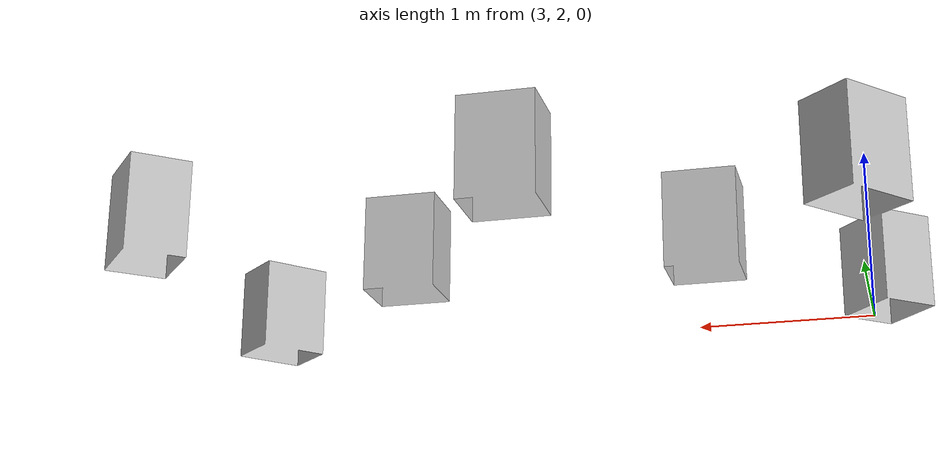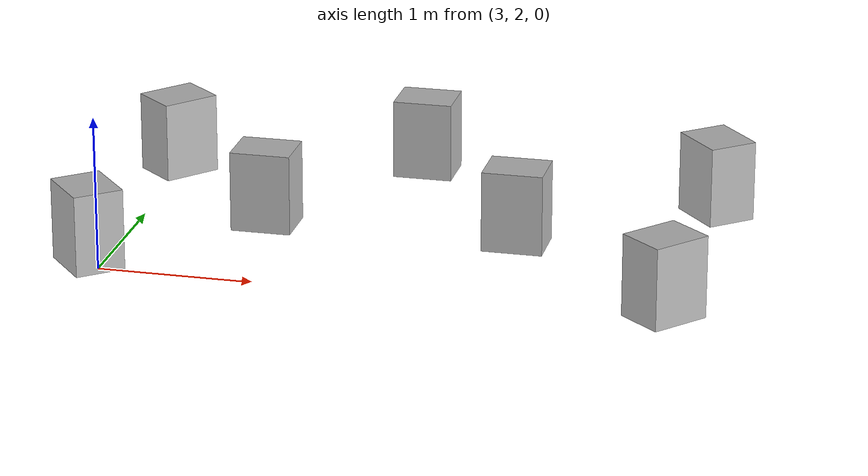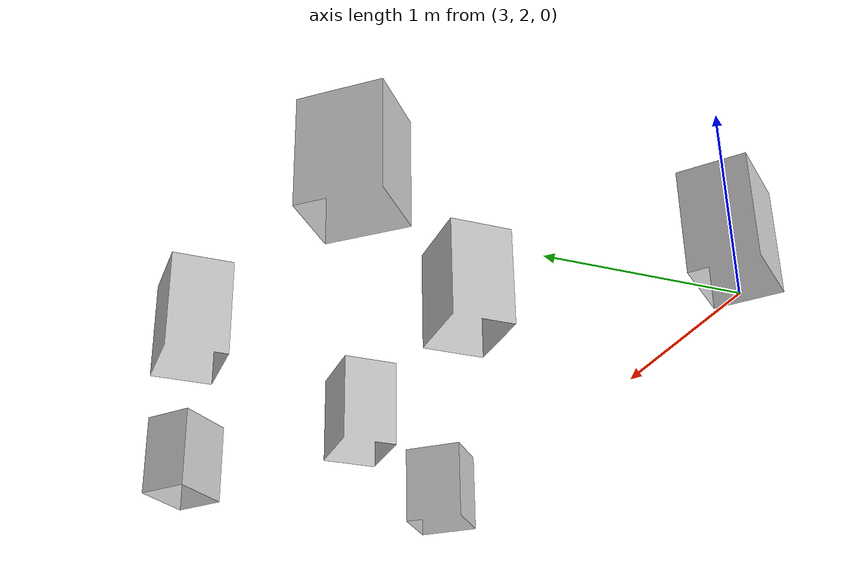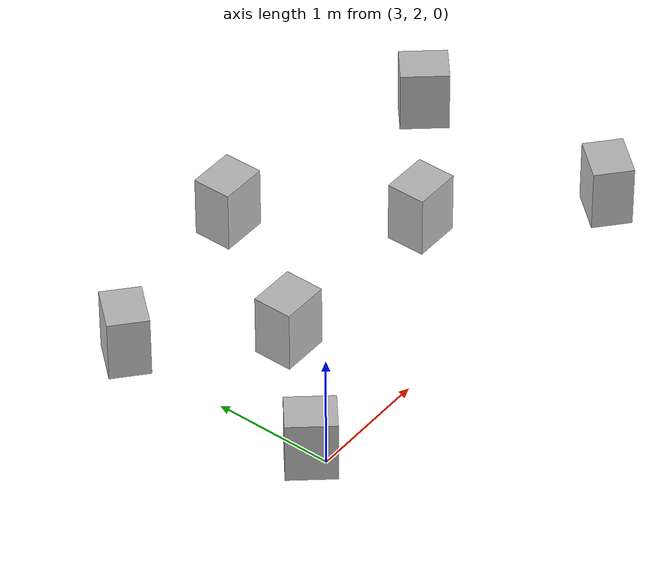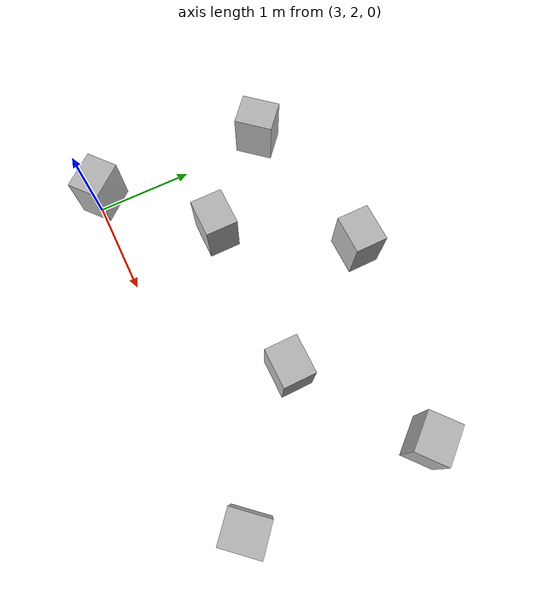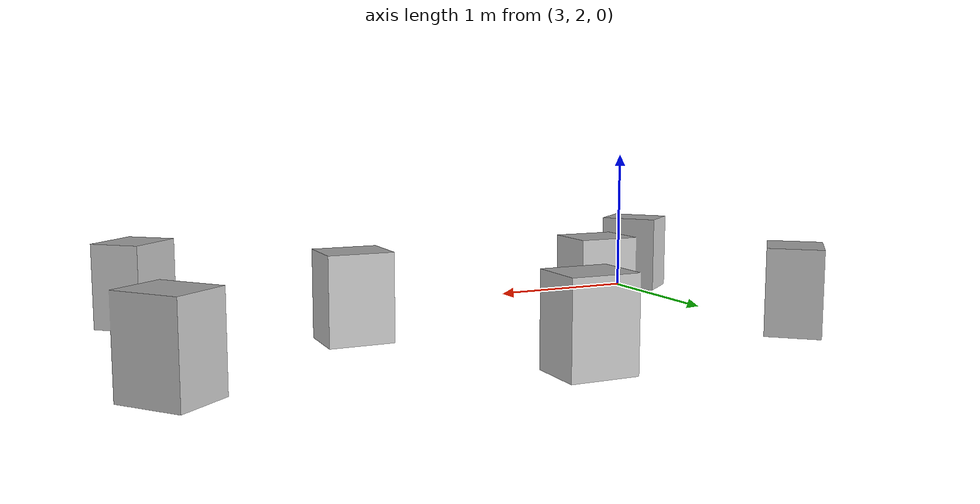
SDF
<?xml version="1.0"?>
<sdf version="1.5">
  <model name="CubesTR">
    <static>true</static>
    <link name="main">
      <visual name="visual">
        <pose>0 0 0 0 0 0</pose>
		<geometry>
			<mesh>
				<uri>model://world/CubesTR/CubesTR.dae</uri>
			</mesh>
		</geometry>
      </visual>
      <collision name="collision">
        <pose>0 0 0 0 0 0</pose>
		<geometry>
			<mesh>
				<uri>model://world/CubesTR/CubesTR.dae</uri>
			</mesh>
		</geometry>
        <surface>
          <friction>
            <ode>
              <mu>0.1</mu>
              <mu2>0.1</mu2>
            </ode>
          </friction>
        </surface>
      </collision>
    </link>
  </model>
</sdf>
